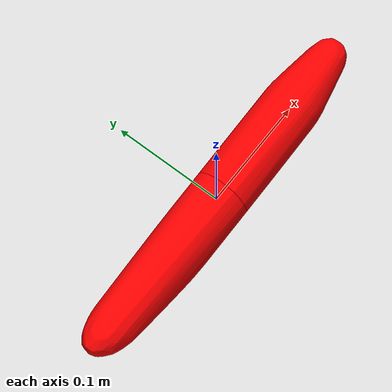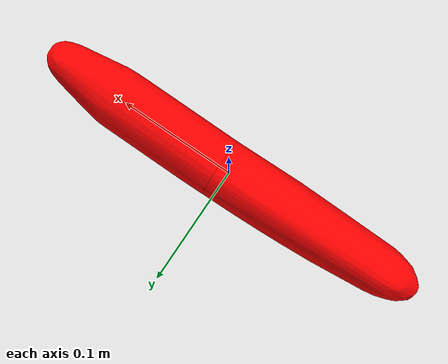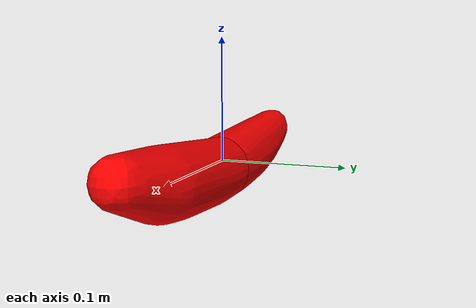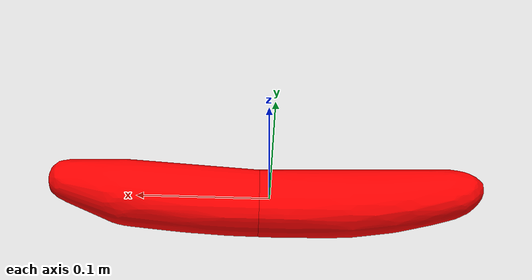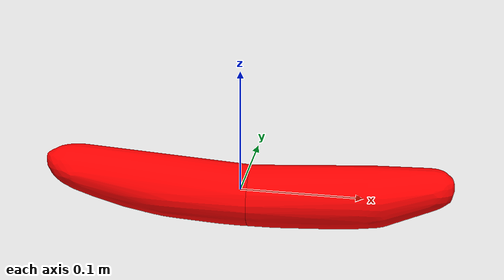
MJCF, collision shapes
<?xml version="1.0" ?>
<mujoco model="cucumber">
	<compiler meshdir="cucumber/meshes" texturedir="cucumber/textures" angle="radian" autolimits="true" balanceinertia="true" boundmass="0.000001" boundinertia="0.000001"/>
	<default>
		<default class="visual">
			<geom contype="0" conaffinity="0"/>
		</default>
		<default class="collision">
			<geom rgba="1.0 0.0 0.0 0.0"/>
		</default>
	</default>
	<asset>
		<mesh name="CucumberSeed" file="stl/CucumberSeed.stl" scale="1.0 1.0 1.0"/>
		<mesh name="CucumberSeed_001" file="stl/CucumberSeed_001.stl" scale="1.0 1.0 1.0"/>
		<mesh name="CucumberSeed_002" file="stl/CucumberSeed_002.stl" scale="1.0 1.0 1.0"/>
		<mesh name="CucumberSeed_003" file="stl/CucumberSeed_003.stl" scale="1.0 1.0 1.0"/>
		<mesh name="CucumberSeed_004" file="stl/CucumberSeed_004.stl" scale="1.0 1.0 1.0"/>
		<mesh name="CucumberPeel" file="obj/CucumberPeel.obj" scale="1.0 1.0 1.0"/>
		<mesh name="CucumberPeel_001" file="stl/CucumberPeel_001.stl" scale="1.0 1.0 1.0"/>
		<mesh name="CucumberPeel_002" file="stl/CucumberPeel_002.stl" scale="1.0 1.0 1.0"/>
		<mesh name="CucumberFlesh" file="stl/CucumberFlesh.stl" scale="1.0 1.0 1.0"/>
		<mesh name="CucumberFlesh_001" file="stl/CucumberFlesh_001.stl" scale="1.0 1.0 1.0"/>
		<mesh name="CucumberFlesh_002" file="stl/CucumberFlesh_002.stl" scale="1.0 1.0 1.0"/>
		<material name="M_CucumberSeed" rgba="0.8026000261306763 0.814300000667572 0.779699981212616 1.0" emission="0.0"/>
		<material name="M_CucumberPeel" texture="T_CucumberPeel"/>
		<material name="M_CucumberFlesh" rgba="0.8371999859809875 0.845300018787384 0.7939000129699707 1.0" emission="0.0"/>
		<texture name="T_CucumberPeel" type="2d" file="T_CucumberPeel.png"/>
	</asset>
	<worldbody>
		<body name="cucumber" pos="0.0 0.0 0.0" quat="1.0 0.0 0.0 0.0">
			<body name="cucumber_seed" pos="0.0 0.0 0.0" quat="1.0 0.0 0.0 0.0">
				<inertial mass="0.00473949545994401" pos="-0.012091939337551594 0.00030309162684716284 -0.0014663522597402334" quat="0.6973711252212524 0.7166472673416138 0.0063811358995735645 -0.007034474052488804" diaginertia="5.006056085221644e-07 2.7045089154853486e-05 2.7084082830697298e-05"/>
				<geom name="CucumberSeed" type="mesh" pos="0.0 0.0 0.0" quat="1.0 0.0 0.0 0.0" mesh="CucumberSeed" material="M_CucumberSeed" class="visual"/>
				<geom name="CucumberSeed_001" type="mesh" pos="0.0 0.0 0.0" quat="1.0 0.0 0.0 0.0" mesh="CucumberSeed_001" class="collision"/>
				<geom name="CucumberSeed_002" type="mesh" pos="0.0 0.0 0.0" quat="1.0 0.0 0.0 0.0" mesh="CucumberSeed_002" class="collision"/>
				<geom name="CucumberSeed_003" type="mesh" pos="0.0 0.0 0.0" quat="1.0 0.0 0.0 0.0" mesh="CucumberSeed_003" class="collision"/>
				<geom name="CucumberSeed_004" type="mesh" pos="0.0 0.0 0.0" quat="1.0 0.0 0.0 0.0" mesh="CucumberSeed_004" class="collision"/>
			</body>
			<body name="cucumber_flesh" pos="0.0 0.0 0.0" quat="1.0 0.0 0.0 0.0">
				<inertial mass="0.4015066921710968" pos="0.00399218313395977 -0.00027733901515603065 -0.00025371467927470803" quat="0.7123469710350037 -0.7018182873725891 -0.002469181315973401 0.002616745186969638" diaginertia="9.512118413113058e-05 0.002785260323435068 0.002795502543449402"/>
				<geom name="CucumberFlesh" type="mesh" pos="0.0 0.0 0.0" quat="1.0 0.0 0.0 0.0" mesh="CucumberFlesh" material="M_CucumberFlesh" class="visual"/>
				<geom name="CucumberFlesh_001" type="mesh" pos="0.0 0.0 0.0" quat="1.0 0.0 0.0 0.0" mesh="CucumberFlesh_001" class="collision"/>
				<geom name="CucumberFlesh_002" type="mesh" pos="0.0 0.0 0.0" quat="1.0 0.0 0.0 0.0" mesh="CucumberFlesh_002" class="collision"/>
			</body>
			<body name="cucumber_peel" pos="0.0 0.0 0.0" quat="1.0 0.0 0.0 0.0">
				<inertial mass="0.01669645495712757" pos="0.0021707320120185614 -0.0003415114770177752 0.0005959284608252347" quat="0.7114979028701782 -0.7026793360710144 -0.00215158867649734 0.0027909288182854652" diaginertia="7.45302349969279e-06 0.00013717271212954074 0.00013771808880846947"/>
				<geom name="CucumberPeel" type="mesh" pos="0.0 0.0 0.0" quat="1.0 0.0 0.0 0.0" mesh="CucumberPeel" material="M_CucumberPeel" class="visual"/>
				<geom name="CucumberPeel_001" type="mesh" pos="0.0 0.0 0.0" quat="1.0 0.0 0.0 0.0" mesh="CucumberPeel_001" class="collision"/>
				<geom name="CucumberPeel_002" type="mesh" pos="0.0 0.0 0.0" quat="1.0 0.0 0.0 0.0" mesh="CucumberPeel_002" class="collision"/>
			</body>
		</body>
	</worldbody>
	<equality/>
</mujoco>
